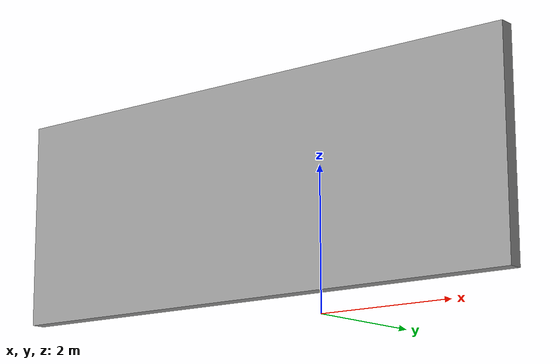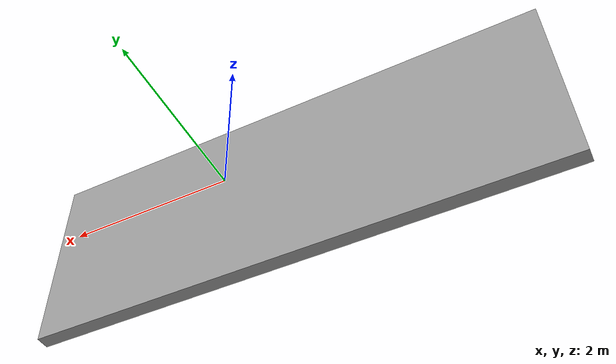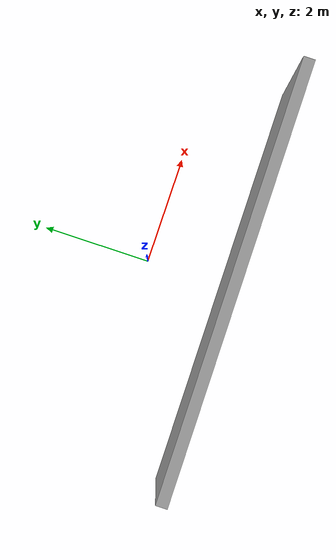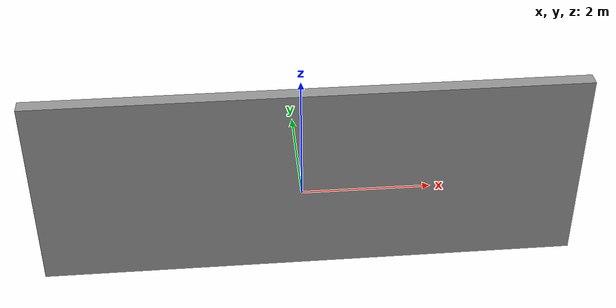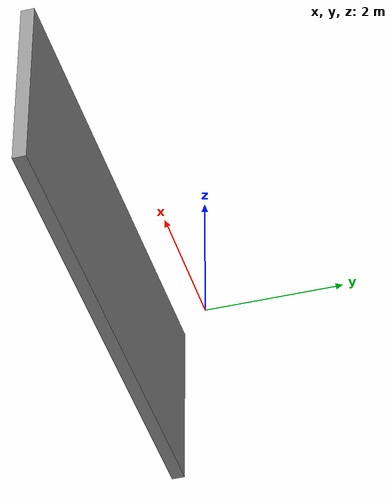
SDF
<?xml version="1.0" ?>
<sdf version="1.3">
  <model name="grey_wall">
    <static>true</static>
    <link name="link">
      <pose>0 -1.5 1.4 0 0 0</pose>
      <collision name="collision">
        <geometry>
          <box>
            <size>7.5 0.2 2.8</size>
          </box>
        </geometry>
      </collision>
      <visual name="visual">
        <cast_shadows>false</cast_shadows>
        <geometry>
          <box>
            <size>7.5 0.2 2.8</size>
          </box>
        </geometry>
        <material>
          <script>
            <uri>model://grey_wall/materials/scripts</uri>
            <uri>model://grey_wall/materials/textures</uri>
            <name>vrc/grey_wall</name>
          </script>
        </material>
      </visual>
    </link>
  </model>
</sdf>
